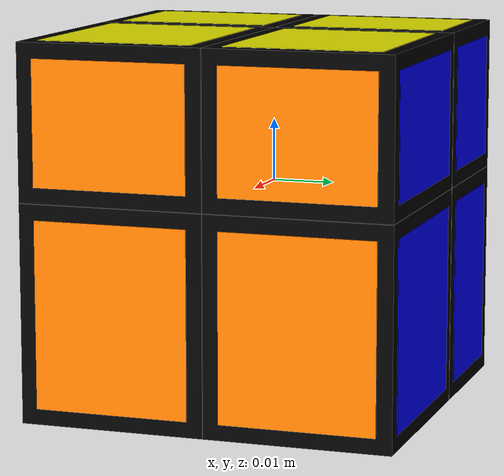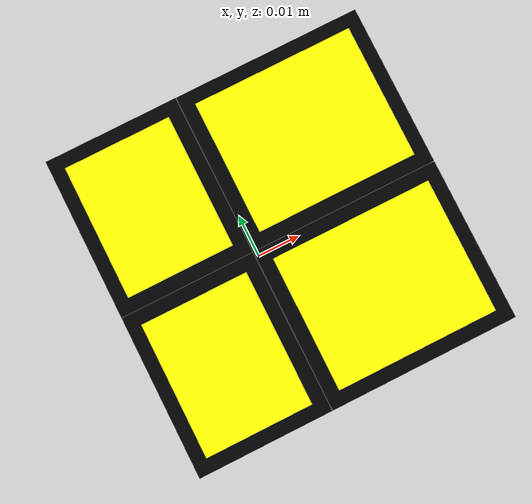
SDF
<?xml version="1.0" ?>
<sdf version="1.7">
	<model name="mirror_cube_2x2">
		<link name="center"/>
		<link name="cubie_0_0_0">
			<pose>-0.012549999999999999 -0.01505 -0.01755 0.0 0.0 0.0</pose>
			<inertial>
				<mass>0.010237499999999998</mass>
				<inertia>
					<ixx>1.8128906249999994e-06</ixx>
					<ixy>0.0</ixy>
					<ixz>0.0</ixz>
					<iyy>1.5782812499999993e-06</iyy>
					<iyz>0.0</iyz>
					<izz>1.3010156249999997e-06</izz>
				</inertia>
			</inertial>
			<collision name="collision">
				<geometry>
					<box>
						<size>0.024999999999999998 0.03 0.034999999999999996</size>
					</box>
				</geometry>
				<surface>
					<friction>
						<ode>
							<mu>0.6</mu>
							<mu2>0.6</mu2>
						</ode>
					</friction>
				</surface>
			</collision>
			<visual name="black">
				<geometry>
					<box>
						<size>0.024999999999999998 0.03 0.034999999999999996</size>
					</box>
				</geometry>
				<material>
					<diffuse>0 0 0 1</diffuse>
				</material>
			</visual>
			<visual name="red">
				<pose>-0.012499999999999999 0.0 0.0 0.0 0.0 0.0</pose>
				<geometry>
					<box>
						<size>0.0002 0.025 0.03</size>
					</box>
				</geometry>
				<material>
					<diffuse>1 0 0 1</diffuse>
				</material>
			</visual>
			<visual name="green">
				<pose>0.0 -0.015 0.0 0.0 0.0 0.0</pose>
				<geometry>
					<box>
						<size>0.02 0.00025 0.03</size>
					</box>
				</geometry>
				<material>
					<diffuse>0 1 0 1</diffuse>
				</material>
			</visual>
			<visual name="white">
				<pose>0.0 0.0 -0.017499999999999998 0.0 0.0 0.0</pose>
				<geometry>
					<box>
						<size>0.02 0.025 0.0003</size>
					</box>
				</geometry>
				<material>
					<diffuse>1 1 1 1</diffuse>
				</material>
			</visual>
		</link>
		<joint name="ball_0_0_0" type="ball">
			<pose>0.012549999999999999 0.01505 0.01755 -0.0 -0.0 -0.0</pose>
			<parent>center</parent>
			<child>cubie_0_0_0</child>
			<axis>
				<dynamics>
					<damping>0.1</damping>
				</dynamics>
				<limit>
					<effort>0</effort>
				</limit>
			</axis>
		</joint>
		<link name="cubie_0_0_1">
			<pose>-0.012549999999999999 -0.01505 0.01255 0.0 0.0 0.0</pose>
			<inertial>
				<mass>0.0073124999999999996</mass>
				<inertia>
					<ixx>9.29296875e-07</ixx>
					<ixy>0.0</ixy>
					<ixz>0.0</ixz>
					<iyy>7.6171875e-07</iyy>
					<iyz>0.0</iyz>
					<izz>9.292968749999999e-07</izz>
				</inertia>
			</inertial>
			<collision name="collision">
				<geometry>
					<box>
						<size>0.024999999999999998 0.03 0.025</size>
					</box>
				</geometry>
				<surface>
					<friction>
						<ode>
							<mu>0.6</mu>
							<mu2>0.6</mu2>
						</ode>
					</friction>
				</surface>
			</collision>
			<visual name="black">
				<geometry>
					<box>
						<size>0.024999999999999998 0.03 0.025</size>
					</box>
				</geometry>
				<material>
					<diffuse>0 0 0 1</diffuse>
				</material>
			</visual>
			<visual name="red">
				<pose>-0.012499999999999999 0.0 0.0 0.0 0.0 0.0</pose>
				<geometry>
					<box>
						<size>0.0002 0.025 0.02</size>
					</box>
				</geometry>
				<material>
					<diffuse>1 0 0 1</diffuse>
				</material>
			</visual>
			<visual name="green">
				<pose>0.0 -0.015 0.0 0.0 0.0 0.0</pose>
				<geometry>
					<box>
						<size>0.02 0.00025 0.02</size>
					</box>
				</geometry>
				<material>
					<diffuse>0 1 0 1</diffuse>
				</material>
			</visual>
			<visual name="yellow">
				<pose>0.0 0.0 0.0125 0.0 0.0 0.0</pose>
				<geometry>
					<box>
						<size>0.02 0.025 0.0002</size>
					</box>
				</geometry>
				<material>
					<diffuse>1 1 0 1</diffuse>
				</material>
			</visual>
		</link>
		<joint name="ball_0_0_1" type="ball">
			<pose>0.012549999999999999 0.01505 -0.01255 -0.0 -0.0 -0.0</pose>
			<parent>center</parent>
			<child>cubie_0_0_1</child>
			<axis>
				<dynamics>
					<damping>0.1</damping>
				</dynamics>
				<limit>
					<effort>0</effort>
				</limit>
			</axis>
		</joint>
		<link name="cubie_0_1_0">
			<pose>-0.012549999999999999 0.01505 -0.01755 0.0 0.0 0.0</pose>
			<inertial>
				<mass>0.010237499999999998</mass>
				<inertia>
					<ixx>1.8128906249999994e-06</ixx>
					<ixy>0.0</ixy>
					<ixz>0.0</ixz>
					<iyy>1.5782812499999993e-06</iyy>
					<iyz>0.0</iyz>
					<izz>1.3010156249999997e-06</izz>
				</inertia>
			</inertial>
			<collision name="collision">
				<geometry>
					<box>
						<size>0.024999999999999998 0.03 0.034999999999999996</size>
					</box>
				</geometry>
				<surface>
					<friction>
						<ode>
							<mu>0.6</mu>
							<mu2>0.6</mu2>
						</ode>
					</friction>
				</surface>
			</collision>
			<visual name="black">
				<geometry>
					<box>
						<size>0.024999999999999998 0.03 0.034999999999999996</size>
					</box>
				</geometry>
				<material>
					<diffuse>0 0 0 1</diffuse>
				</material>
			</visual>
			<visual name="red">
				<pose>-0.012499999999999999 0.0 0.0 0.0 0.0 0.0</pose>
				<geometry>
					<box>
						<size>0.0002 0.025 0.03</size>
					</box>
				</geometry>
				<material>
					<diffuse>1 0 0 1</diffuse>
				</material>
			</visual>
			<visual name="blue">
				<pose>0.0 0.015 0.0 0.0 0.0 0.0</pose>
				<geometry>
					<box>
						<size>0.02 0.00025 0.03</size>
					</box>
				</geometry>
				<material>
					<diffuse>0 0 1 1</diffuse>
				</material>
			</visual>
			<visual name="white">
				<pose>0.0 0.0 -0.017499999999999998 0.0 0.0 0.0</pose>
				<geometry>
					<box>
						<size>0.02 0.025 0.0003</size>
					</box>
				</geometry>
				<material>
					<diffuse>1 1 1 1</diffuse>
				</material>
			</visual>
		</link>
		<joint name="ball_0_1_0" type="ball">
			<pose>0.012549999999999999 -0.01505 0.01755 -0.0 -0.0 -0.0</pose>
			<parent>center</parent>
			<child>cubie_0_1_0</child>
			<axis>
				<dynamics>
					<damping>0.1</damping>
				</dynamics>
				<limit>
					<effort>0</effort>
				</limit>
			</axis>
		</joint>
		<link name="cubie_0_1_1">
			<pose>-0.012549999999999999 0.01505 0.01255 0.0 0.0 0.0</pose>
			<inertial>
				<mass>0.0073124999999999996</mass>
				<inertia>
					<ixx>9.29296875e-07</ixx>
					<ixy>0.0</ixy>
					<ixz>0.0</ixz>
					<iyy>7.6171875e-07</iyy>
					<iyz>0.0</iyz>
					<izz>9.292968749999999e-07</izz>
				</inertia>
			</inertial>
			<collision name="collision">
				<geometry>
					<box>
						<size>0.024999999999999998 0.03 0.025</size>
					</box>
				</geometry>
				<surface>
					<friction>
						<ode>
							<mu>0.6</mu>
							<mu2>0.6</mu2>
						</ode>
					</friction>
				</surface>
			</collision>
			<visual name="black">
				<geometry>
					<box>
						<size>0.024999999999999998 0.03 0.025</size>
					</box>
				</geometry>
				<material>
					<diffuse>0 0 0 1</diffuse>
				</material>
			</visual>
			<visual name="red">
				<pose>-0.012499999999999999 0.0 0.0 0.0 0.0 0.0</pose>
				<geometry>
					<box>
						<size>0.0002 0.025 0.02</size>
					</box>
				</geometry>
				<material>
					<diffuse>1 0 0 1</diffuse>
				</material>
			</visual>
			<visual name="blue">
				<pose>0.0 0.015 0.0 0.0 0.0 0.0</pose>
				<geometry>
					<box>
						<size>0.02 0.00025 0.02</size>
					</box>
				</geometry>
				<material>
					<diffuse>0 0 1 1</diffuse>
				</material>
			</visual>
			<visual name="yellow">
				<pose>0.0 0.0 0.0125 0.0 0.0 0.0</pose>
				<geometry>
					<box>
						<size>0.02 0.025 0.0002</size>
					</box>
				</geometry>
				<material>
					<diffuse>1 1 0 1</diffuse>
				</material>
			</visual>
		</link>
		<joint name="ball_0_1_1" type="ball">
			<pose>0.012549999999999999 -0.01505 -0.01255 -0.0 -0.0 -0.0</pose>
			<parent>center</parent>
			<child>cubie_0_1_1</child>
			<axis>
				<dynamics>
					<damping>0.1</damping>
				</dynamics>
				<limit>
					<effort>0</effort>
				</limit>
			</axis>
		</joint>
		<link name="cubie_1_0_0">
			<pose>0.017550000000000003 -0.01505 -0.01755 0.0 0.0 0.0</pose>
			<inertial>
				<mass>0.0143325</mass>
				<inertia>
					<ixx>2.5380468749999996e-06</ixx>
					<ixy>0.0</ixy>
					<ixz>0.0</ixz>
					<iyy>2.9262187499999997e-06</iyy>
					<iyz>0.0</iyz>
					<izz>2.538046875e-06</izz>
				</inertia>
			</inertial>
			<collision name="collision">
				<geometry>
					<box>
						<size>0.035 0.03 0.034999999999999996</size>
					</box>
				</geometry>
				<surface>
					<friction>
						<ode>
							<mu>0.6</mu>
							<mu2>0.6</mu2>
						</ode>
					</friction>
				</surface>
			</collision>
			<visual name="black">
				<geometry>
					<box>
						<size>0.035 0.03 0.034999999999999996</size>
					</box>
				</geometry>
				<material>
					<diffuse>0 0 0 1</diffuse>
				</material>
			</visual>
			<visual name="orange">
				<pose>0.0175 0.0 0.0 0.0 0.0 0.0</pose>
				<geometry>
					<box>
						<size>0.0003 0.025 0.03</size>
					</box>
				</geometry>
				<material>
					<diffuse>1.0 0.5 0.0 1.0</diffuse>
				</material>
			</visual>
			<visual name="green">
				<pose>0.0 -0.015 0.0 0.0 0.0 0.0</pose>
				<geometry>
					<box>
						<size>0.03 0.00025 0.03</size>
					</box>
				</geometry>
				<material>
					<diffuse>0 1 0 1</diffuse>
				</material>
			</visual>
			<visual name="white">
				<pose>0.0 0.0 -0.017499999999999998 0.0 0.0 0.0</pose>
				<geometry>
					<box>
						<size>0.03 0.025 0.0003</size>
					</box>
				</geometry>
				<material>
					<diffuse>1 1 1 1</diffuse>
				</material>
			</visual>
		</link>
		<joint name="ball_1_0_0" type="ball">
			<pose>-0.017550000000000003 0.01505 0.01755 -0.0 -0.0 -0.0</pose>
			<parent>center</parent>
			<child>cubie_1_0_0</child>
			<axis>
				<dynamics>
					<damping>0.1</damping>
				</dynamics>
				<limit>
					<effort>0</effort>
				</limit>
			</axis>
		</joint>
		<link name="cubie_1_0_1">
			<pose>0.017550000000000003 -0.01505 0.01255 0.0 0.0 0.0</pose>
			<inertial>
				<mass>0.010237500000000002</mass>
				<inertia>
					<ixx>1.3010156250000004e-06</ixx>
					<ixy>0.0</ixy>
					<ixz>0.0</ixz>
					<iyy>1.5782812500000006e-06</iyy>
					<iyz>0.0</iyz>
					<izz>1.8128906250000004e-06</izz>
				</inertia>
			</inertial>
			<collision name="collision">
				<geometry>
					<box>
						<size>0.035 0.03 0.025</size>
					</box>
				</geometry>
				<surface>
					<friction>
						<ode>
							<mu>0.6</mu>
							<mu2>0.6</mu2>
						</ode>
					</friction>
				</surface>
			</collision>
			<visual name="black">
				<geometry>
					<box>
						<size>0.035 0.03 0.025</size>
					</box>
				</geometry>
				<material>
					<diffuse>0 0 0 1</diffuse>
				</material>
			</visual>
			<visual name="orange">
				<pose>0.0175 0.0 0.0 0.0 0.0 0.0</pose>
				<geometry>
					<box>
						<size>0.0003 0.025 0.02</size>
					</box>
				</geometry>
				<material>
					<diffuse>1.0 0.5 0.0 1.0</diffuse>
				</material>
			</visual>
			<visual name="green">
				<pose>0.0 -0.015 0.0 0.0 0.0 0.0</pose>
				<geometry>
					<box>
						<size>0.03 0.00025 0.02</size>
					</box>
				</geometry>
				<material>
					<diffuse>0 1 0 1</diffuse>
				</material>
			</visual>
			<visual name="yellow">
				<pose>0.0 0.0 0.0125 0.0 0.0 0.0</pose>
				<geometry>
					<box>
						<size>0.03 0.025 0.0002</size>
					</box>
				</geometry>
				<material>
					<diffuse>1 1 0 1</diffuse>
				</material>
			</visual>
		</link>
		<joint name="ball_1_0_1" type="ball">
			<pose>-0.017550000000000003 0.01505 -0.01255 -0.0 -0.0 -0.0</pose>
			<parent>center</parent>
			<child>cubie_1_0_1</child>
			<axis>
				<dynamics>
					<damping>0.1</damping>
				</dynamics>
				<limit>
					<effort>0</effort>
				</limit>
			</axis>
		</joint>
		<link name="cubie_1_1_0">
			<pose>0.017550000000000003 0.01505 -0.01755 0.0 0.0 0.0</pose>
			<inertial>
				<mass>0.0143325</mass>
				<inertia>
					<ixx>2.5380468749999996e-06</ixx>
					<ixy>0.0</ixy>
					<ixz>0.0</ixz>
					<iyy>2.9262187499999997e-06</iyy>
					<iyz>0.0</iyz>
					<izz>2.538046875e-06</izz>
				</inertia>
			</inertial>
			<collision name="collision">
				<geometry>
					<box>
						<size>0.035 0.03 0.034999999999999996</size>
					</box>
				</geometry>
				<surface>
					<friction>
						<ode>
							<mu>0.6</mu>
							<mu2>0.6</mu2>
						</ode>
					</friction>
				</surface>
			</collision>
			<visual name="black">
				<geometry>
					<box>
						<size>0.035 0.03 0.034999999999999996</size>
					</box>
				</geometry>
				<material>
					<diffuse>0 0 0 1</diffuse>
				</material>
			</visual>
			<visual name="orange">
				<pose>0.0175 0.0 0.0 0.0 0.0 0.0</pose>
				<geometry>
					<box>
						<size>0.0003 0.025 0.03</size>
					</box>
				</geometry>
				<material>
					<diffuse>1.0 0.5 0.0 1.0</diffuse>
				</material>
			</visual>
			<visual name="blue">
				<pose>0.0 0.015 0.0 0.0 0.0 0.0</pose>
				<geometry>
					<box>
						<size>0.03 0.00025 0.03</size>
					</box>
				</geometry>
				<material>
					<diffuse>0 0 1 1</diffuse>
				</material>
			</visual>
			<visual name="white">
				<pose>0.0 0.0 -0.017499999999999998 0.0 0.0 0.0</pose>
				<geometry>
					<box>
						<size>0.03 0.025 0.0003</size>
					</box>
				</geometry>
				<material>
					<diffuse>1 1 1 1</diffuse>
				</material>
			</visual>
		</link>
		<joint name="ball_1_1_0" type="ball">
			<pose>-0.017550000000000003 -0.01505 0.01755 -0.0 -0.0 -0.0</pose>
			<parent>center</parent>
			<child>cubie_1_1_0</child>
			<axis>
				<dynamics>
					<damping>0.1</damping>
				</dynamics>
				<limit>
					<effort>0</effort>
				</limit>
			</axis>
		</joint>
		<link name="cubie_1_1_1">
			<pose>0.017550000000000003 0.01505 0.01255 0.0 0.0 0.0</pose>
			<inertial>
				<mass>0.010237500000000002</mass>
				<inertia>
					<ixx>1.3010156250000004e-06</ixx>
					<ixy>0.0</ixy>
					<ixz>0.0</ixz>
					<iyy>1.5782812500000006e-06</iyy>
					<iyz>0.0</iyz>
					<izz>1.8128906250000004e-06</izz>
				</inertia>
			</inertial>
			<collision name="collision">
				<geometry>
					<box>
						<size>0.035 0.03 0.025</size>
					</box>
				</geometry>
				<surface>
					<friction>
						<ode>
							<mu>0.6</mu>
							<mu2>0.6</mu2>
						</ode>
					</friction>
				</surface>
			</collision>
			<visual name="black">
				<geometry>
					<box>
						<size>0.035 0.03 0.025</size>
					</box>
				</geometry>
				<material>
					<diffuse>0 0 0 1</diffuse>
				</material>
			</visual>
			<visual name="orange">
				<pose>0.0175 0.0 0.0 0.0 0.0 0.0</pose>
				<geometry>
					<box>
						<size>0.0003 0.025 0.02</size>
					</box>
				</geometry>
				<material>
					<diffuse>1.0 0.5 0.0 1.0</diffuse>
				</material>
			</visual>
			<visual name="blue">
				<pose>0.0 0.015 0.0 0.0 0.0 0.0</pose>
				<geometry>
					<box>
						<size>0.03 0.00025 0.02</size>
					</box>
				</geometry>
				<material>
					<diffuse>0 0 1 1</diffuse>
				</material>
			</visual>
			<visual name="yellow">
				<pose>0.0 0.0 0.0125 0.0 0.0 0.0</pose>
				<geometry>
					<box>
						<size>0.03 0.025 0.0002</size>
					</box>
				</geometry>
				<material>
					<diffuse>1 1 0 1</diffuse>
				</material>
			</visual>
		</link>
		<joint name="ball_1_1_1" type="ball">
			<pose>-0.017550000000000003 -0.01505 -0.01255 -0.0 -0.0 -0.0</pose>
			<parent>center</parent>
			<child>cubie_1_1_1</child>
			<axis>
				<dynamics>
					<damping>0.1</damping>
				</dynamics>
				<limit>
					<effort>0</effort>
				</limit>
			</axis>
		</joint>
	</model>
</sdf>
